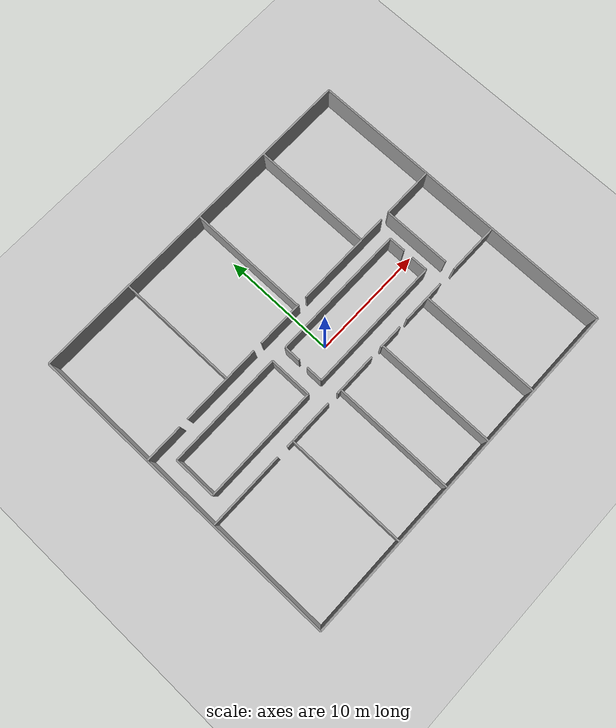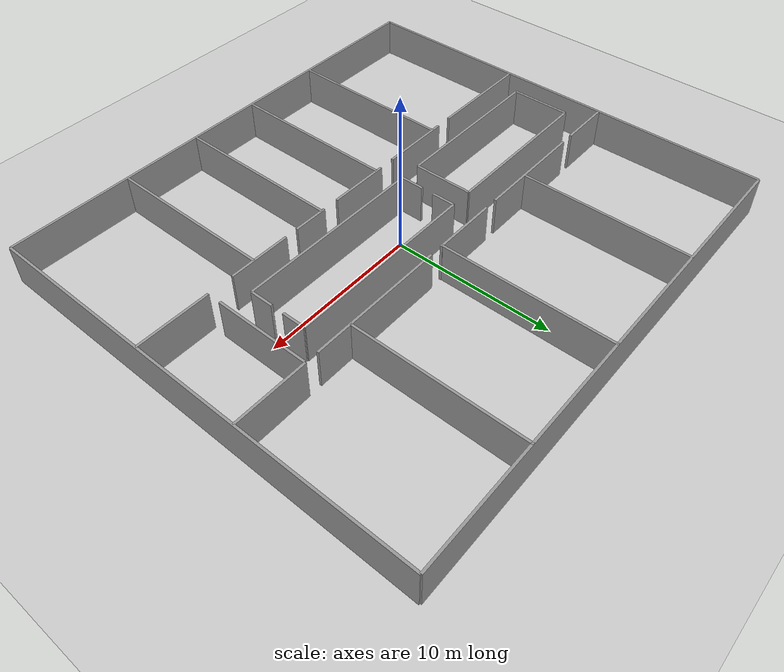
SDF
<?xml version="1.0" ?>
<sdf version="1.5">
    <world name="inaut_world">
   <include>
            <uri>model://ground_plane</uri>
        </include>

           <include>
            <uri>model://sun</uri>
        </include>
            <include>
            <uri>model://inaut</uri>
        </include>
        </world>
</sdf>

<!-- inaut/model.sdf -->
<!-- |    This document was autogenerated by xacro from model.xacro                    | -->
<!-- |    EDITING THIS FILE BY HAND IS NOT RECOMMENDED                                 | -->

  <sdf version="1.7">
    <model name="inaut">
      <static>true</static>
      <link name="contorno1">
        <collision name="contorno1_collision">
          <laser_retro>0.5</laser_retro>
          <geometry>
            <box>
              <size>30.8 0.15 2.5</size>
            </box>
          </geometry>
          <pose>0 0 1.25 0 -0 0</pose>
        </collision>
        <visual name="contorno1_visual">
          <pose>0 0 1.25 0 -0 0</pose>
          <geometry>
            <box>
              <size>30.8 0.15 2.5</size>
            </box>
          </geometry>
          <material>
            <script>
              <uri>file://media/materials/scripts/gazebo.material</uri>
              <name>Gazebo/Grey</name>
            </script>
            <ambient>1 1 1 1</ambient>
          </material>
          <meta>
            <layer>0</layer>
          </meta>
        </visual>
        <collision name="contorno1_esq1">
          <laser_retro>1.0</laser_retro>
          <geometry>
            <box>
              <size>0.16 0.16 2.5</size>
            </box>
          </geometry>
          <pose>15.32 0 1.25 0 -0 0</pose>
        </collision>
        <collision name="contorno1_esq2">
          <laser_retro>1.0</laser_retro>
          <geometry>
            <box>
              <size>0.16 0.16 2.5</size>
            </box>
          </geometry>
          <pose>-15.32 0 1.25 0 -0 0</pose>
        </collision>
        <pose>0 13.95 0 0 0 0</pose>
      </link>
      <link name="contorno2">
        <collision name="contorno2_collision">
          <laser_retro>0.5</laser_retro>
          <geometry>
            <box>
              <size>30.8 0.15 2.5</size>
            </box>
          </geometry>
          <pose>0 0 1.25 0 -0 0</pose>
        </collision>
        <visual name="contorno2_visual">
          <pose>0 0 1.25 0 -0 0</pose>
          <geometry>
            <box>
              <size>30.8 0.15 2.5</size>
            </box>
          </geometry>
          <material>
            <script>
              <uri>file://media/materials/scripts/gazebo.material</uri>
              <name>Gazebo/Grey</name>
            </script>
            <ambient>1 1 1 1</ambient>
          </material>
          <meta>
            <layer>0</layer>
          </meta>
        </visual>
        <collision name="contorno2_esq1">
          <laser_retro>1.0</laser_retro>
          <geometry>
            <box>
              <size>0.16 0.16 2.5</size>
            </box>
          </geometry>
          <pose>15.32 0 1.25 0 -0 0</pose>
        </collision>
        <collision name="contorno2_esq2">
          <laser_retro>1.0</laser_retro>
          <geometry>
            <box>
              <size>0.16 0.16 2.5</size>
            </box>
          </geometry>
          <pose>-15.32 0 1.25 0 -0 0</pose>
        </collision>
        <pose>0 -13.95 0 0 0 0</pose>
      </link>
      <link name="contorno3">
        <collision name="contorno3_collision">
          <laser_retro>0.5</laser_retro>
          <geometry>
            <box>
              <size>0.15 27.9 2.5</size>
            </box>
          </geometry>
          <pose>0 0 1.25 0 -0 0</pose>
        </collision>
        <visual name="contorno3_visual">
          <pose>0 0 1.25 0 -0 0</pose>
          <geometry>
            <box>
              <size>0.15 27.9 2.5</size>
            </box>
          </geometry>
          <material>
            <script>
              <uri>file://media/materials/scripts/gazebo.material</uri>
              <name>Gazebo/Grey</name>
            </script>
            <ambient>1 1 1 1</ambient>
          </material>
          <meta>
            <layer>0</layer>
          </meta>
        </visual>
        <collision name="contorno3_esq1">
          <laser_retro>1.0</laser_retro>
          <geometry>
            <box>
              <size>0.16 0.16 2.5</size>
            </box>
          </geometry>
          <pose>0 13.87 1.25 0 -0 0</pose>
        </collision>
        <collision name="contorno3_esq2">
          <laser_retro>1.0</laser_retro>
          <geometry>
            <box>
              <size>0.16 0.16 2.5</size>
            </box>
          </geometry>
          <pose>0 -13.87 1.25 0 -0 0</pose>
        </collision>
        <pose>15.4 0 0 0 0 0</pose>
      </link>
      <link name="contorno4">
        <collision name="contorno4_collision">
          <laser_retro>0.5</laser_retro>
          <geometry>
            <box>
              <size>0.15 27.9 2.5</size>
            </box>
          </geometry>
          <pose>0 0 1.25 0 -0 0</pose>
        </collision>
        <visual name="contorno4_visual">
          <pose>0 0 1.25 0 -0 0</pose>
          <geometry>
            <box>
              <size>0.15 27.9 2.5</size>
            </box>
          </geometry>
          <material>
            <script>
              <uri>file://media/materials/scripts/gazebo.material</uri>
              <name>Gazebo/Grey</name>
            </script>
            <ambient>1 1 1 1</ambient>
          </material>
          <meta>
            <layer>0</layer>
          </meta>
        </visual>
        <collision name="contorno4_esq1">
          <laser_retro>1.0</laser_retro>
          <geometry>
            <box>
              <size>0.16 0.16 2.5</size>
            </box>
          </geometry>
          <pose>0 13.87 1.25 0 -0 0</pose>
        </collision>
        <collision name="contorno4_esq2">
          <laser_retro>1.0</laser_retro>
          <geometry>
            <box>
              <size>0.16 0.16 2.5</size>
            </box>
          </geometry>
          <pose>0 -13.87 1.25 0 -0 0</pose>
        </collision>
        <pose>-15.4 0 0 0 0 0</pose>
      </link>
      <link name="division1_izq">
        <collision name="division1_izq_collision">
          <laser_retro>0.5</laser_retro>
          <geometry>
            <box>
              <size>0.15 10.6 2.5</size>
            </box>
          </geometry>
          <pose>0 0 1.25 0 -0 0</pose>
        </collision>
        <visual name="division1_izq_visual">
          <pose>0 0 1.25 0 -0 0</pose>
          <geometry>
            <box>
              <size>0.15 10.6 2.5</size>
            </box>
          </geometry>
          <material>
            <script>
              <uri>file://media/materials/scripts/gazebo.material</uri>
              <name>Gazebo/Grey</name>
            </script>
            <ambient>1 1 1 1</ambient>
          </material>
          <meta>
            <layer>0</layer>
          </meta>
        </visual>
        <collision name="division1_izq_esq1">
          <laser_retro>1.0</laser_retro>
          <geometry>
            <box>
              <size>0.16 0.16 2.5</size>
            </box>
          </geometry>
          <pose>0 5.22 1.25 0 -0 0</pose>
        </collision>
        <collision name="division1_izq_esq2">
          <laser_retro>1.0</laser_retro>
          <geometry>
            <box>
              <size>0.16 0.16 2.5</size>
            </box>
          </geometry>
          <pose>0 -5.22 1.25 0 -0 0</pose>
        </collision>
        <pose>7.8 8.7 0 0 0 0</pose>
      </link>
      <link name="division2_izq">
        <collision name="division2_izq_collision">
          <laser_retro>0.5</laser_retro>
          <geometry>
            <box>
              <size>0.15 10.6 2.5</size>
            </box>
          </geometry>
          <pose>0 0 1.25 0 -0 0</pose>
        </collision>
        <visual name="division2_izq_visual">
          <pose>0 0 1.25 0 -0 0</pose>
          <geometry>
            <box>
              <size>0.15 10.6 2.5</size>
            </box>
          </geometry>
          <material>
            <script>
              <uri>file://media/materials/scripts/gazebo.material</uri>
              <name>Gazebo/Grey</name>
            </script>
            <ambient>1 1 1 1</ambient>
          </material>
          <meta>
            <layer>0</layer>
          </meta>
        </visual>
        <collision name="division2_izq_esq1">
          <laser_retro>1.0</laser_retro>
          <geometry>
            <box>
              <size>0.16 0.16 2.5</size>
            </box>
          </geometry>
          <pose>0 5.22 1.25 0 -0 0</pose>
        </collision>
        <collision name="division2_izq_esq2">
          <laser_retro>1.0</laser_retro>
          <geometry>
            <box>
              <size>0.16 0.16 2.5</size>
            </box>
          </geometry>
          <pose>0 -5.22 1.25 0 -0 0</pose>
        </collision>
        <pose>0.6 8.7 0 0 0 0</pose>
      </link>
      <link name="division3_izq">
        <collision name="division3_izq_collision">
          <laser_retro>0.5</laser_retro>
          <geometry>
            <box>
              <size>0.15 10.6 2.5</size>
            </box>
          </geometry>
          <pose>0 0 1.25 0 -0 0</pose>
        </collision>
        <visual name="division3_izq_visual">
          <pose>0 0 1.25 0 -0 0</pose>
          <geometry>
            <box>
              <size>0.15 10.6 2.5</size>
            </box>
          </geometry>
          <material>
            <script>
              <uri>file://media/materials/scripts/gazebo.material</uri>
              <name>Gazebo/Grey</name>
            </script>
            <ambient>1 1 1 1</ambient>
          </material>
          <meta>
            <layer>0</layer>
          </meta>
        </visual>
        <collision name="division3_izq_esq1">
          <laser_retro>1.0</laser_retro>
          <geometry>
            <box>
              <size>0.16 0.16 2.5</size>
            </box>
          </geometry>
          <pose>0 5.22 1.25 0 -0 0</pose>
        </collision>
        <collision name="division3_izq_esq2">
          <laser_retro>1.0</laser_retro>
          <geometry>
            <box>
              <size>0.16 0.16 2.5</size>
            </box>
          </geometry>
          <pose>0 -5.22 1.25 0 -0 0</pose>
        </collision>
        <pose>-7.1 8.7 0 0 0 0</pose>
      </link>
      <link name="division1_der">
        <collision name="division1_der_collision">
          <laser_retro>0.5</laser_retro>
          <geometry>
            <box>
              <size>0.15 10.5 2.5</size>
            </box>
          </geometry>
          <pose>0 0 1.25 0 -0 0</pose>
        </collision>
        <visual name="division1_der_visual">
          <pose>0 0 1.25 0 -0 0</pose>
          <geometry>
            <box>
              <size>0.15 10.5 2.5</size>
            </box>
          </geometry>
          <material>
            <script>
              <uri>file://media/materials/scripts/gazebo.material</uri>
              <name>Gazebo/Grey</name>
            </script>
            <ambient>1 1 1 1</ambient>
          </material>
          <meta>
            <layer>0</layer>
          </meta>
        </visual>
        <collision name="division1_der_esq1">
          <laser_retro>1.0</laser_retro>
          <geometry>
            <box>
              <size>0.16 0.16 2.5</size>
            </box>
          </geometry>
          <pose>0 5.17 1.25 0 -0 0</pose>
        </collision>
        <collision name="division1_der_esq2">
          <laser_retro>1.0</laser_retro>
          <geometry>
            <box>
              <size>0.16 0.16 2.5</size>
            </box>
          </geometry>
          <pose>0 -5.17 1.25 0 -0 0</pose>
        </collision>
        <pose>7.8 -8.65 0 0 0 0</pose>
      </link>
      <link name="division2_der">
        <collision name="division2_der_collision">
          <laser_retro>0.5</laser_retro>
          <geometry>
            <box>
              <size>0.15 10.5 2.5</size>
            </box>
          </geometry>
          <pose>0 0 1.25 0 -0 0</pose>
        </collision>
        <visual name="division2_der_visual">
          <pose>0 0 1.25 0 -0 0</pose>
          <geometry>
            <box>
              <size>0.15 10.5 2.5</size>
            </box>
          </geometry>
          <material>
            <script>
              <uri>file://media/materials/scripts/gazebo.material</uri>
              <name>Gazebo/Grey</name>
            </script>
            <ambient>1 1 1 1</ambient>
          </material>
          <meta>
            <layer>0</layer>
          </meta>
        </visual>
        <collision name="division2_der_esq1">
          <laser_retro>1.0</laser_retro>
          <geometry>
            <box>
              <size>0.16 0.16 2.5</size>
            </box>
          </geometry>
          <pose>0 5.17 1.25 0 -0 0</pose>
        </collision>
        <collision name="division2_der_esq2">
          <laser_retro>1.0</laser_retro>
          <geometry>
            <box>
              <size>0.16 0.16 2.5</size>
            </box>
          </geometry>
          <pose>0 -5.17 1.25 0 -0 0</pose>
        </collision>
        <pose>2.7 -8.65 0 0 0 0</pose>
      </link>
      <link name="division3_der">
        <collision name="division3_der_collision">
          <laser_retro>0.5</laser_retro>
          <geometry>
            <box>
              <size>0.15 10.5 2.5</size>
            </box>
          </geometry>
          <pose>0 0 1.25 0 -0 0</pose>
        </collision>
        <visual name="division3_der_visual">
          <pose>0 0 1.25 0 -0 0</pose>
          <geometry>
            <box>
              <size>0.15 10.5 2.5</size>
            </box>
          </geometry>
          <material>
            <script>
              <uri>file://media/materials/scripts/gazebo.material</uri>
              <name>Gazebo/Grey</name>
            </script>
            <ambient>1 1 1 1</ambient>
          </material>
          <meta>
            <layer>0</layer>
          </meta>
        </visual>
        <collision name="division3_der_esq1">
          <laser_retro>1.0</laser_retro>
          <geometry>
            <box>
              <size>0.16 0.16 2.5</size>
            </box>
          </geometry>
          <pose>0 5.17 1.25 0 -0 0</pose>
        </collision>
        <collision name="division3_der_esq2">
          <laser_retro>1.0</laser_retro>
          <geometry>
            <box>
              <size>0.16 0.16 2.5</size>
            </box>
          </geometry>
          <pose>0 -5.17 1.25 0 -0 0</pose>
        </collision>
        <pose>-1.9 -8.65 0 0 0 0</pose>
      </link>
      <link name="division4_der">
        <collision name="division4_der_collision">
          <laser_retro>0.5</laser_retro>
          <geometry>
            <box>
              <size>0.15 10.5 2.5</size>
            </box>
          </geometry>
          <pose>0 0 1.25 0 -0 0</pose>
        </collision>
        <visual name="division4_der_visual">
          <pose>0 0 1.25 0 -0 0</pose>
          <geometry>
            <box>
              <size>0.15 10.5 2.5</size>
            </box>
          </geometry>
          <material>
            <script>
              <uri>file://media/materials/scripts/gazebo.material</uri>
              <name>Gazebo/Grey</name>
            </script>
            <ambient>1 1 1 1</ambient>
          </material>
          <meta>
            <layer>0</layer>
          </meta>
        </visual>
        <collision name="division4_der_esq1">
          <laser_retro>1.0</laser_retro>
          <geometry>
            <box>
              <size>0.16 0.16 2.5</size>
            </box>
          </geometry>
          <pose>0 5.17 1.25 0 -0 0</pose>
        </collision>
        <collision name="division4_der_esq2">
          <laser_retro>1.0</laser_retro>
          <geometry>
            <box>
              <size>0.16 0.16 2.5</size>
            </box>
          </geometry>
          <pose>0 -5.17 1.25 0 -0 0</pose>
        </collision>
        <pose>-7.1 -8.65 0 0 0 0</pose>
      </link>
      <link name="interna1">
        <collision name="interna1_collision">
          <laser_retro>0.5</laser_retro>
          <geometry>
            <box>
              <size>0.15 3.7 2.5</size>
            </box>
          </geometry>
          <pose>0 0 1.25 0 -0 0</pose>
        </collision>
        <visual name="interna1_visual">
          <pose>0 0 1.25 0 -0 0</pose>
          <geometry>
            <box>
              <size>0.15 3.7 2.5</size>
            </box>
          </geometry>
          <material>
            <script>
              <uri>file://media/materials/scripts/gazebo.material</uri>
              <name>Gazebo/Grey</name>
            </script>
            <ambient>1 1 1 1</ambient>
          </material>
          <meta>
            <layer>0</layer>
          </meta>
        </visual>
        <collision name="interna1_esq1">
          <laser_retro>1.0</laser_retro>
          <geometry>
            <box>
              <size>0.16 0.16 2.5</size>
            </box>
          </geometry>
          <pose>0 1.77 1.25 0 -0 0</pose>
        </collision>
        <collision name="interna1_esq2">
          <laser_retro>1.0</laser_retro>
          <geometry>
            <box>
              <size>0.16 0.16 2.5</size>
            </box>
          </geometry>
          <pose>0 -1.77 1.25 0 -0 0</pose>
        </collision>
        <pose>-13.9 0 0 0 0 0</pose>
      </link>
      <link name="interna2">
        <collision name="interna2_collision">
          <laser_retro>0.5</laser_retro>
          <geometry>
            <box>
              <size>0.15 3.7 2.5</size>
            </box>
          </geometry>
          <pose>0 0 1.25 0 -0 0</pose>
        </collision>
        <visual name="interna2_visual">
          <pose>0 0 1.25 0 -0 0</pose>
          <geometry>
            <box>
              <size>0.15 3.7 2.5</size>
            </box>
          </geometry>
          <material>
            <script>
              <uri>file://media/materials/scripts/gazebo.material</uri>
              <name>Gazebo/Grey</name>
            </script>
            <ambient>1 1 1 1</ambient>
          </material>
          <meta>
            <layer>0</layer>
          </meta>
        </visual>
        <collision name="interna2_esq1">
          <laser_retro>1.0</laser_retro>
          <geometry>
            <box>
              <size>0.16 0.16 2.5</size>
            </box>
          </geometry>
          <pose>0 1.77 1.25 0 -0 0</pose>
        </collision>
        <collision name="interna2_esq2">
          <laser_retro>1.0</laser_retro>
          <geometry>
            <box>
              <size>0.16 0.16 2.5</size>
            </box>
          </geometry>
          <pose>0 -1.77 1.25 0 -0 0</pose>
        </collision>
        <pose>-3.8 0 0 0 0 0</pose>
      </link>
      <link name="interna4_1">
        <collision name="interna4_1_collision">
          <laser_retro>0.5</laser_retro>
          <geometry>
            <box>
              <size>0.15 1.45 2.5</size>
            </box>
          </geometry>
          <pose>0 0 1.25 0 -0 0</pose>
        </collision>
        <visual name="interna4_1_visual">
          <pose>0 0 1.25 0 -0 0</pose>
          <geometry>
            <box>
              <size>0.15 1.45 2.5</size>
            </box>
          </geometry>
          <material>
            <script>
              <uri>file://media/materials/scripts/gazebo.material</uri>
              <name>Gazebo/Grey</name>
            </script>
            <ambient>1 1 1 1</ambient>
          </material>
          <meta>
            <layer>0</layer>
          </meta>
        </visual>
        <collision name="interna4_1_esq1">
          <laser_retro>1.0</laser_retro>
          <geometry>
            <box>
              <size>0.16 0.16 2.5</size>
            </box>
          </geometry>
          <pose>0 0.645 1.25 0 -0 0</pose>
        </collision>
        <collision name="interna4_1_esq2">
          <laser_retro>1.0</laser_retro>
          <geometry>
            <box>
              <size>0.16 0.16 2.5</size>
            </box>
          </geometry>
          <pose>0 -0.645 1.25 0 -0 0</pose>
        </collision>
        <pose>9.4 1.13 0 0 0 0</pose>
      </link>
      <link name="interna4_2">
        <collision name="interna4_2_collision">
          <laser_retro>0.5</laser_retro>
          <geometry>
            <box>
              <size>0.15 1.45 2.5</size>
            </box>
          </geometry>
          <pose>0 0 1.25 0 -0 0</pose>
        </collision>
        <visual name="interna4_2_visual">
          <pose>0 0 1.25 0 -0 0</pose>
          <geometry>
            <box>
              <size>0.15 1.45 2.5</size>
            </box>
          </geometry>
          <material>
            <script>
              <uri>file://media/materials/scripts/gazebo.material</uri>
              <name>Gazebo/Grey</name>
            </script>
            <ambient>1 1 1 1</ambient>
          </material>
          <meta>
            <layer>0</layer>
          </meta>
        </visual>
        <collision name="interna4_2_esq1">
          <laser_retro>1.0</laser_retro>
          <geometry>
            <box>
              <size>0.16 0.16 2.5</size>
            </box>
          </geometry>
          <pose>0 0.645 1.25 0 -0 0</pose>
        </collision>
        <collision name="interna4_2_esq2">
          <laser_retro>1.0</laser_retro>
          <geometry>
            <box>
              <size>0.16 0.16 2.5</size>
            </box>
          </geometry>
          <pose>0 -0.645 1.25 0 -0 0</pose>
        </collision>
        <pose>9.4 -1.13 0 0 0 0</pose>
      </link>
      <link name="interna3_1">
        <collision name="interna3_1_collision">
          <laser_retro>0.5</laser_retro>
          <geometry>
            <box>
              <size>0.15 1.45 2.5</size>
            </box>
          </geometry>
          <pose>0 0 1.25 0 -0 0</pose>
        </collision>
        <visual name="interna3_1_visual">
          <pose>0 0 1.25 0 -0 0</pose>
          <geometry>
            <box>
              <size>0.15 1.45 2.5</size>
            </box>
          </geometry>
          <material>
            <script>
              <uri>file://media/materials/scripts/gazebo.material</uri>
              <name>Gazebo/Grey</name>
            </script>
            <ambient>1 1 1 1</ambient>
          </material>
          <meta>
            <layer>0</layer>
          </meta>
        </visual>
        <collision name="interna3_1_esq1">
          <laser_retro>1.0</laser_retro>
          <geometry>
            <box>
              <size>0.16 0.16 2.5</size>
            </box>
          </geometry>
          <pose>0 0.645 1.25 0 -0 0</pose>
        </collision>
        <collision name="interna3_1_esq2">
          <laser_retro>1.0</laser_retro>
          <geometry>
            <box>
              <size>0.16 0.16 2.5</size>
            </box>
          </geometry>
          <pose>0 -0.645 1.25 0 -0 0</pose>
        </collision>
        <pose>-2.4 1.13 0 0 0 0</pose>
      </link>
      <link name="interna3_2">
        <collision name="interna3_2_collision">
          <laser_retro>0.5</laser_retro>
          <geometry>
            <box>
              <size>0.15 1.45 2.5</size>
            </box>
          </geometry>
          <pose>0 0 1.25 0 -0 0</pose>
        </collision>
        <visual name="interna3_2_visual">
          <pose>0 0 1.25 0 -0 0</pose>
          <geometry>
            <box>
              <size>0.15 1.45 2.5</size>
            </box>
          </geometry>
          <material>
            <script>
              <uri>file://media/materials/scripts/gazebo.material</uri>
              <name>Gazebo/Grey</name>
            </script>
            <ambient>1 1 1 1</ambient>
          </material>
          <meta>
            <layer>0</layer>
          </meta>
        </visual>
        <collision name="interna3_2_esq1">
          <laser_retro>1.0</laser_retro>
          <geometry>
            <box>
              <size>0.16 0.16 2.5</size>
            </box>
          </geometry>
          <pose>0 0.645 1.25 0 -0 0</pose>
        </collision>
        <collision name="interna3_2_esq2">
          <laser_retro>1.0</laser_retro>
          <geometry>
            <box>
              <size>0.16 0.16 2.5</size>
            </box>
          </geometry>
          <pose>0 -0.645 1.25 0 -0 0</pose>
        </collision>
        <pose>-2.4 -1.13 0 0 0 0</pose>
      </link>
      <link name="interna5">
        <collision name="interna5_collision">
          <laser_retro>0.5</laser_retro>
          <geometry>
            <box>
              <size>0.15 5.9 2.5</size>
            </box>
          </geometry>
          <pose>0 0 1.25 0 -0 0</pose>
        </collision>
        <visual name="interna5_visual">
          <pose>0 0 1.25 0 -0 0</pose>
          <geometry>
            <box>
              <size>0.15 5.9 2.5</size>
            </box>
          </geometry>
          <material>
            <script>
              <uri>file://media/materials/scripts/gazebo.material</uri>
              <name>Gazebo/Grey</name>
            </script>
            <ambient>1 1 1 1</ambient>
          </material>
          <meta>
            <layer>0</layer>
          </meta>
        </visual>
        <collision name="interna5_esq1">
          <laser_retro>1.0</laser_retro>
          <geometry>
            <box>
              <size>0.16 0.16 2.5</size>
            </box>
          </geometry>
          <pose>0 2.87 1.25 0 -0 0</pose>
        </collision>
        <collision name="interna5_esq2">
          <laser_retro>1.0</laser_retro>
          <geometry>
            <box>
              <size>0.16 0.16 2.5</size>
            </box>
          </geometry>
          <pose>0 -2.87 1.25 0 -0 0</pose>
        </collision>
        <pose>10.9 0.4 0 0 0 0</pose>
      </link>
      <link name="pasillo3">
        <collision name="pasillo3_collision">
          <laser_retro>0.5</laser_retro>
          <geometry>
            <box>
              <size>10.1 0.15 2.5</size>
            </box>
          </geometry>
          <pose>0 0 1.25 0 -0 0</pose>
        </collision>
        <visual name="pasillo3_visual">
          <pose>0 0 1.25 0 -0 0</pose>
          <geometry>
            <box>
              <size>10.1 0.15 2.5</size>
            </box>
          </geometry>
          <material>
            <script>
              <uri>file://media/materials/scripts/gazebo.material</uri>
              <name>Gazebo/Grey</name>
            </script>
            <ambient>1 1 1 1</ambient>
          </material>
          <meta>
            <layer>0</layer>
          </meta>
        </visual>
        <collision name="pasillo3_esq1">
          <laser_retro>1.0</laser_retro>
          <geometry>
            <box>
              <size>0.16 0.16 2.5</size>
            </box>
          </geometry>
          <pose>4.97 0 1.25 0 -0 0</pose>
        </collision>
        <collision name="pasillo3_esq2">
          <laser_retro>1.0</laser_retro>
          <geometry>
            <box>
              <size>0.16 0.16 2.5</size>
            </box>
          </geometry>
          <pose>-4.97 0 1.25 0 -0 0</pose>
        </collision>
        <pose>-8.85 1.85 0 0 0 0</pose>
      </link>
      <link name="pasillo4">
        <collision name="pasillo4_collision">
          <laser_retro>0.5</laser_retro>
          <geometry>
            <box>
              <size>10.1 0.15 2.5</size>
            </box>
          </geometry>
          <pose>0 0 1.25 0 -0 0</pose>
        </collision>
        <visual name="pasillo4_visual">
          <pose>0 0 1.25 0 -0 0</pose>
          <geometry>
            <box>
              <size>10.1 0.15 2.5</size>
            </box>
          </geometry>
          <material>
            <script>
              <uri>file://media/materials/scripts/gazebo.material</uri>
              <name>Gazebo/Grey</name>
            </script>
            <ambient>1 1 1 1</ambient>
          </material>
          <meta>
            <layer>0</layer>
          </meta>
        </visual>
        <collision name="pasillo4_esq1">
          <laser_retro>1.0</laser_retro>
          <geometry>
            <box>
              <size>0.16 0.16 2.5</size>
            </box>
          </geometry>
          <pose>4.97 0 1.25 0 -0 0</pose>
        </collision>
        <collision name="pasillo4_esq2">
          <laser_retro>1.0</laser_retro>
          <geometry>
            <box>
              <size>0.16 0.16 2.5</size>
            </box>
          </geometry>
          <pose>-4.97 0 1.25 0 -0 0</pose>
        </collision>
        <pose>-8.85 -1.85 0 0 0 0</pose>
      </link>
      <link name="pasillo5">
        <collision name="pasillo5_collision">
          <laser_retro>0.5</laser_retro>
          <geometry>
            <box>
              <size>11.8 0.15 2.5</size>
            </box>
          </geometry>
          <pose>0 0 1.25 0 -0 0</pose>
        </collision>
        <visual name="pasillo5_visual">
          <pose>0 0 1.25 0 -0 0</pose>
          <geometry>
            <box>
              <size>11.8 0.15 2.5</size>
            </box>
          </geometry>
          <material>
            <script>
              <uri>file://media/materials/scripts/gazebo.material</uri>
              <name>Gazebo/Grey</name>
            </script>
            <ambient>1 1 1 1</ambient>
          </material>
          <meta>
            <layer>0</layer>
          </meta>
        </visual>
        <collision name="pasillo5_esq1">
          <laser_retro>1.0</laser_retro>
          <geometry>
            <box>
              <size>0.16 0.16 2.5</size>
            </box>
          </geometry>
          <pose>5.82 0 1.25 0 -0 0</pose>
        </collision>
        <collision name="pasillo5_esq2">
          <laser_retro>1.0</laser_retro>
          <geometry>
            <box>
              <size>0.16 0.16 2.5</size>
            </box>
          </geometry>
          <pose>-5.82 0 1.25 0 -0 0</pose>
        </collision>
        <pose>3.5 1.85 0 0 0 0</pose>
      </link>
      <link name="pasillo6">
        <collision name="pasillo6_collision">
          <laser_retro>0.5</laser_retro>
          <geometry>
            <box>
              <size>11.8 0.15 2.5</size>
            </box>
          </geometry>
          <pose>0 0 1.25 0 -0 0</pose>
        </collision>
        <visual name="pasillo6_visual">
          <pose>0 0 1.25 0 -0 0</pose>
          <geometry>
            <box>
              <size>11.8 0.15 2.5</size>
            </box>
          </geometry>
          <material>
            <script>
              <uri>file://media/materials/scripts/gazebo.material</uri>
              <name>Gazebo/Grey</name>
            </script>
            <ambient>1 1 1 1</ambient>
          </material>
          <meta>
            <layer>0</layer>
          </meta>
        </visual>
        <collision name="pasillo6_esq1">
          <laser_retro>1.0</laser_retro>
          <geometry>
            <box>
              <size>0.16 0.16 2.5</size>
            </box>
          </geometry>
          <pose>5.82 0 1.25 0 -0 0</pose>
        </collision>
        <collision name="pasillo6_esq2">
          <laser_retro>1.0</laser_retro>
          <geometry>
            <box>
              <size>0.16 0.16 2.5</size>
            </box>
          </geometry>
          <pose>-5.82 0 1.25 0 -0 0</pose>
        </collision>
        <pose>3.5 -1.85 0 0 0 0</pose>
      </link>
      <link name="p1">
        <collision name="p1_collision">
          <laser_retro>0.5</laser_retro>
          <geometry>
            <box>
              <size>3.35 0.15 2.5</size>
            </box>
          </geometry>
          <pose>0 0 1.25 0 -0 0</pose>
        </collision>
        <visual name="p1_visual">
          <pose>0 0 1.25 0 -0 0</pose>
          <geometry>
            <box>
              <size>3.35 0.15 2.5</size>
            </box>
          </geometry>
          <material>
            <script>
              <uri>file://media/materials/scripts/gazebo.material</uri>
              <name>Gazebo/Grey</name>
            </script>
            <ambient>1 1 1 1</ambient>
          </material>
          <meta>
            <layer>0</layer>
          </meta>
        </visual>
        <collision name="p1_esq1">
          <laser_retro>1.0</laser_retro>
          <geometry>
            <box>
              <size>0.16 0.16 2.5</size>
            </box>
          </geometry>
          <pose>1.595 0 1.25 0 -0 0</pose>
        </collision>
        <collision name="p1_esq2">
          <laser_retro>1.0</laser_retro>
          <geometry>
            <box>
              <size>0.16 0.16 2.5</size>
            </box>
          </geometry>
          <pose>-1.595 0 1.25 0 -0 0</pose>
        </collision>
        <pose>-13.725 3.4 0 0 0 0</pose>
      </link>
      <link name="p2">
        <collision name="p2_collision">
          <laser_retro>0.5</laser_retro>
          <geometry>
            <box>
              <size>7.05 0.15 2.5</size>
            </box>
          </geometry>
          <pose>0 0 1.25 0 -0 0</pose>
        </collision>
        <visual name="p2_visual">
          <pose>0 0 1.25 0 -0 0</pose>
          <geometry>
            <box>
              <size>7.05 0.15 2.5</size>
            </box>
          </geometry>
          <material>
            <script>
              <uri>file://media/materials/scripts/gazebo.material</uri>
              <name>Gazebo/Grey</name>
            </script>
            <ambient>1 1 1 1</ambient>
          </material>
          <meta>
            <layer>0</layer>
          </meta>
        </visual>
        <collision name="p2_esq1">
          <laser_retro>1.0</laser_retro>
          <geometry>
            <box>
              <size>0.16 0.16 2.5</size>
            </box>
          </geometry>
          <pose>3.445 0 1.25 0 -0 0</pose>
        </collision>
        <collision name="p2_esq2">
          <laser_retro>1.0</laser_retro>
          <geometry>
            <box>
              <size>0.16 0.16 2.5</size>
            </box>
          </geometry>
          <pose>-3.445 0 1.25 0 -0 0</pose>
        </collision>
        <pose>-7.72 3.4 0 0 0 0</pose>
      </link>
      <link name="p3">
        <collision name="p3_collision">
          <laser_retro>0.5</laser_retro>
          <geometry>
            <box>
              <size>4.1 0.15 2.5</size>
            </box>
          </geometry>
          <pose>0 0 1.25 0 -0 0</pose>
        </collision>
        <visual name="p3_visual">
          <pose>0 0 1.25 0 -0 0</pose>
          <geometry>
            <box>
              <size>4.1 0.15 2.5</size>
            </box>
          </geometry>
          <material>
            <script>
              <uri>file://media/materials/scripts/gazebo.material</uri>
              <name>Gazebo/Grey</name>
            </script>
            <ambient>1 1 1 1</ambient>
          </material>
          <meta>
            <layer>0</layer>
          </meta>
        </visual>
        <collision name="p3_esq1">
          <laser_retro>1.0</laser_retro>
          <geometry>
            <box>
              <size>0.16 0.16 2.5</size>
            </box>
          </geometry>
          <pose>1.9699999999999998 0 1.25 0 -0 0</pose>
        </collision>
        <collision name="p3_esq2">
          <laser_retro>1.0</laser_retro>
          <geometry>
            <box>
              <size>0.16 0.16 2.5</size>
            </box>
          </geometry>
          <pose>-1.9699999999999998 0 1.25 0 -0 0</pose>
        </collision>
        <pose>-1.35 3.4 0 0 0 0</pose>
      </link>
      <link name="p4">
        <collision name="p4_collision">
          <laser_retro>0.5</laser_retro>
          <geometry>
            <box>
              <size>8.6 0.15 2.5</size>
            </box>
          </geometry>
          <pose>0 0 1.25 0 -0 0</pose>
        </collision>
        <visual name="p4_visual">
          <pose>0 0 1.25 0 -0 0</pose>
          <geometry>
            <box>
              <size>8.6 0.15 2.5</size>
            </box>
          </geometry>
          <material>
            <script>
              <uri>file://media/materials/scripts/gazebo.material</uri>
              <name>Gazebo/Grey</name>
            </script>
            <ambient>1 1 1 1</ambient>
          </material>
          <meta>
            <layer>0</layer>
          </meta>
        </visual>
        <collision name="p4_esq1">
          <laser_retro>1.0</laser_retro>
          <geometry>
            <box>
              <size>0.16 0.16 2.5</size>
            </box>
          </geometry>
          <pose>4.22 0 1.25 0 -0 0</pose>
        </collision>
        <collision name="p4_esq2">
          <laser_retro>1.0</laser_retro>
          <geometry>
            <box>
              <size>0.16 0.16 2.5</size>
            </box>
          </geometry>
          <pose>-4.22 0 1.25 0 -0 0</pose>
        </collision>
        <pose>5.8 3.4 0 0 0 0</pose>
      </link>
      <link name="p5">
        <collision name="p5_collision">
          <laser_retro>0.5</laser_retro>
          <geometry>
            <box>
              <size>4.5 0.15 2.5</size>
            </box>
          </geometry>
          <pose>0 0 1.25 0 -0 0</pose>
        </collision>
        <visual name="p5_visual">
          <pose>0 0 1.25 0 -0 0</pose>
          <geometry>
            <box>
              <size>4.5 0.15 2.5</size>
            </box>
          </geometry>
          <material>
            <script>
              <uri>file://media/materials/scripts/gazebo.material</uri>
              <name>Gazebo/Grey</name>
            </script>
            <ambient>1 1 1 1</ambient>
          </material>
          <meta>
            <layer>0</layer>
          </meta>
        </visual>
        <collision name="p5_esq1">
          <laser_retro>1.0</laser_retro>
          <geometry>
            <box>
              <size>0.16 0.16 2.5</size>
            </box>
          </geometry>
          <pose>2.17 0 1.25 0 -0 0</pose>
        </collision>
        <collision name="p5_esq2">
          <laser_retro>1.0</laser_retro>
          <geometry>
            <box>
              <size>0.16 0.16 2.5</size>
            </box>
          </geometry>
          <pose>-2.17 0 1.25 0 -0 0</pose>
        </collision>
        <pose>13.15 3.4 0 0 0 0</pose>
      </link>
      <link name="p6">
        <collision name="p6_collision">
          <laser_retro>0.5</laser_retro>
          <geometry>
            <box>
              <size>6.7 0.15 2.5</size>
            </box>
          </geometry>
          <pose>0 0 1.25 0 -0 0</pose>
        </collision>
        <visual name="p6_visual">
          <pose>0 0 1.25 0 -0 0</pose>
          <geometry>
            <box>
              <size>6.7 0.15 2.5</size>
            </box>
          </geometry>
          <material>
            <script>
              <uri>file://media/materials/scripts/gazebo.material</uri>
              <name>Gazebo/Grey</name>
            </script>
            <ambient>1 1 1 1</ambient>
          </material>
          <meta>
            <layer>0</layer>
          </meta>
        </visual>
        <collision name="p6_esq1">
          <laser_retro>1.0</laser_retro>
          <geometry>
            <box>
              <size>0.16 0.16 2.5</size>
            </box>
          </geometry>
          <pose>3.27 0 1.25 0 -0 0</pose>
        </collision>
        <collision name="p6_esq2">
          <laser_retro>1.0</laser_retro>
          <geometry>
            <box>
              <size>0.16 0.16 2.5</size>
            </box>
          </geometry>
          <pose>-3.27 0 1.25 0 -0 0</pose>
        </collision>
        <pose>-12.05 -3.4 0 0 0 0</pose>
      </link>
      <link name="p7">
        <collision name="p7_collision">
          <laser_retro>0.5</laser_retro>
          <geometry>
            <box>
              <size>4.4 0.15 2.5</size>
            </box>
          </geometry>
          <pose>0 0 1.25 0 -0 0</pose>
        </collision>
        <visual name="p7_visual">
          <pose>0 0 1.25 0 -0 0</pose>
          <geometry>
            <box>
              <size>4.4 0.15 2.5</size>
            </box>
          </geometry>
          <material>
            <script>
              <uri>file://media/materials/scripts/gazebo.material</uri>
              <name>Gazebo/Grey</name>
            </script>
            <ambient>1 1 1 1</ambient>
          </material>
          <meta>
            <layer>0</layer>
          </meta>
        </visual>
        <collision name="p7_esq1">
          <laser_retro>1.0</laser_retro>
          <geometry>
            <box>
              <size>0.16 0.16 2.5</size>
            </box>
          </geometry>
          <pose>2.12 0 1.25 0 -0 0</pose>
        </collision>
        <collision name="p7_esq2">
          <laser_retro>1.0</laser_retro>
          <geometry>
            <box>
              <size>0.16 0.16 2.5</size>
            </box>
          </geometry>
          <pose>-2.12 0 1.25 0 -0 0</pose>
        </collision>
        <pose>-5.5 -3.4 0 0 0 0</pose>
      </link>
      <link name="p8">
        <collision name="p8_collision">
          <laser_retro>0.5</laser_retro>
          <geometry>
            <box>
              <size>3.8 0.15 2.5</size>
            </box>
          </geometry>
          <pose>0 0 1.25 0 -0 0</pose>
        </collision>
        <visual name="p8_visual">
          <pose>0 0 1.25 0 -0 0</pose>
          <geometry>
            <box>
              <size>3.8 0.15 2.5</size>
            </box>
          </geometry>
          <material>
            <script>
              <uri>file://media/materials/scripts/gazebo.material</uri>
              <name>Gazebo/Grey</name>
            </script>
            <ambient>1 1 1 1</ambient>
          </material>
          <meta>
            <layer>0</layer>
          </meta>
        </visual>
        <collision name="p8_esq1">
          <laser_retro>1.0</laser_retro>
          <geometry>
            <box>
              <size>0.16 0.16 2.5</size>
            </box>
          </geometry>
          <pose>1.8199999999999998 0 1.25 0 -0 0</pose>
        </collision>
        <collision name="p8_esq2">
          <laser_retro>1.0</laser_retro>
          <geometry>
            <box>
              <size>0.16 0.16 2.5</size>
            </box>
          </geometry>
          <pose>-1.8199999999999998 0 1.25 0 -0 0</pose>
        </collision>
        <pose>-0.4 -3.4 0 0 0 0</pose>
      </link>
      <link name="p9">
        <collision name="p9_collision">
          <laser_retro>0.5</laser_retro>
          <geometry>
            <box>
              <size>2.15 0.15 2.5</size>
            </box>
          </geometry>
          <pose>0 0 1.25 0 -0 0</pose>
        </collision>
        <visual name="p9_visual">
          <pose>0 0 1.25 0 -0 0</pose>
          <geometry>
            <box>
              <size>2.15 0.15 2.5</size>
            </box>
          </geometry>
          <material>
            <script>
              <uri>file://media/materials/scripts/gazebo.material</uri>
              <name>Gazebo/Grey</name>
            </script>
            <ambient>1 1 1 1</ambient>
          </material>
          <meta>
            <layer>0</layer>
          </meta>
        </visual>
        <collision name="p9_esq1">
          <laser_retro>1.0</laser_retro>
          <geometry>
            <box>
              <size>0.16 0.16 2.5</size>
            </box>
          </geometry>
          <pose>0.995 0 1.25 0 -0 0</pose>
        </collision>
        <collision name="p9_esq2">
          <laser_retro>1.0</laser_retro>
          <geometry>
            <box>
              <size>0.16 0.16 2.5</size>
            </box>
          </geometry>
          <pose>-0.995 0 1.25 0 -0 0</pose>
        </collision>
        <pose>3.58 -3.4 0 0 0 0</pose>
      </link>
      <link name="p10">
        <collision name="p10_collision">
          <laser_retro>0.5</laser_retro>
          <geometry>
            <box>
              <size>3.85 0.15 2.5</size>
            </box>
          </geometry>
          <pose>0 0 1.25 0 -0 0</pose>
        </collision>
        <visual name="p10_visual">
          <pose>0 0 1.25 0 -0 0</pose>
          <geometry>
            <box>
              <size>3.85 0.15 2.5</size>
            </box>
          </geometry>
          <material>
            <script>
              <uri>file://media/materials/scripts/gazebo.material</uri>
              <name>Gazebo/Grey</name>
            </script>
            <ambient>1 1 1 1</ambient>
          </material>
          <meta>
            <layer>0</layer>
          </meta>
        </visual>
        <collision name="p10_esq1">
          <laser_retro>1.0</laser_retro>
          <geometry>
            <box>
              <size>0.16 0.16 2.5</size>
            </box>
          </geometry>
          <pose>1.845 0 1.25 0 -0 0</pose>
        </collision>
        <collision name="p10_esq2">
          <laser_retro>1.0</laser_retro>
          <geometry>
            <box>
              <size>0.16 0.16 2.5</size>
            </box>
          </geometry>
          <pose>-1.845 0 1.25 0 -0 0</pose>
        </collision>
        <pose>7.38 -3.4 0 0 0 0</pose>
      </link>
      <link name="p11">
        <collision name="p11_collision">
          <laser_retro>0.5</laser_retro>
          <geometry>
            <box>
              <size>4.5 0.15 2.5</size>
            </box>
          </geometry>
          <pose>0 0 1.25 0 -0 0</pose>
        </collision>
        <visual name="p11_visual">
          <pose>0 0 1.25 0 -0 0</pose>
          <geometry>
            <box>
              <size>4.5 0.15 2.5</size>
            </box>
          </geometry>
          <material>
            <script>
              <uri>file://media/materials/scripts/gazebo.material</uri>
              <name>Gazebo/Grey</name>
            </script>
            <ambient>1 1 1 1</ambient>
          </material>
          <meta>
            <layer>0</layer>
          </meta>
        </visual>
        <collision name="p11_esq1">
          <laser_retro>1.0</laser_retro>
          <geometry>
            <box>
              <size>0.16 0.16 2.5</size>
            </box>
          </geometry>
          <pose>2.17 0 1.25 0 -0 0</pose>
        </collision>
        <collision name="p11_esq2">
          <laser_retro>1.0</laser_retro>
          <geometry>
            <box>
              <size>0.16 0.16 2.5</size>
            </box>
          </geometry>
          <pose>-2.17 0 1.25 0 -0 0</pose>
        </collision>
        <pose>13.15 -3.4 0 0 0 0</pose>
      </link>
    </model>
  </sdf>
